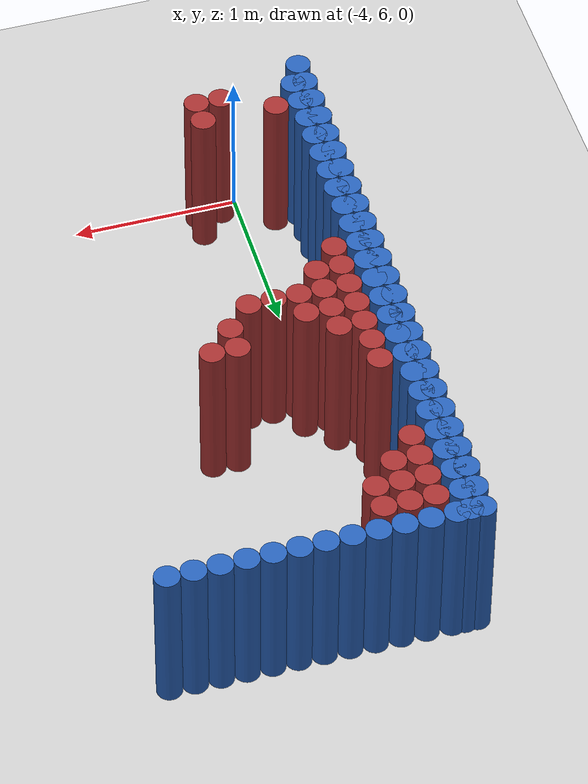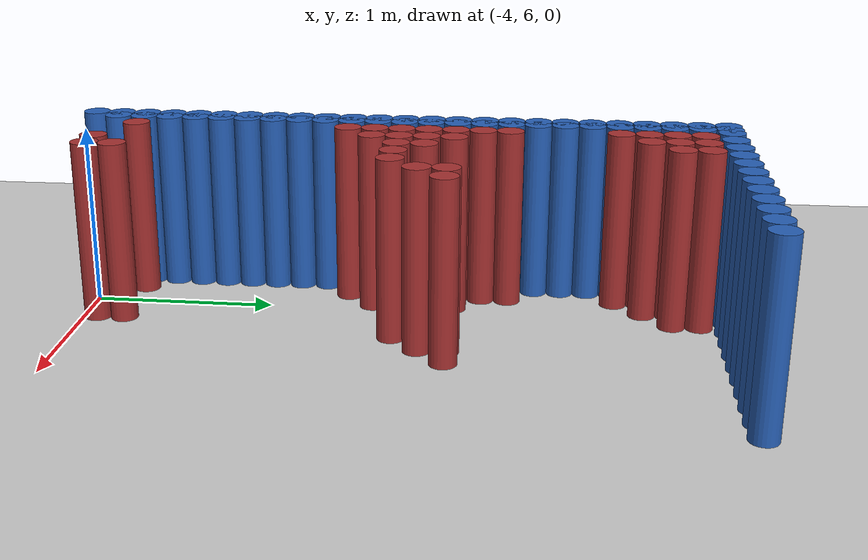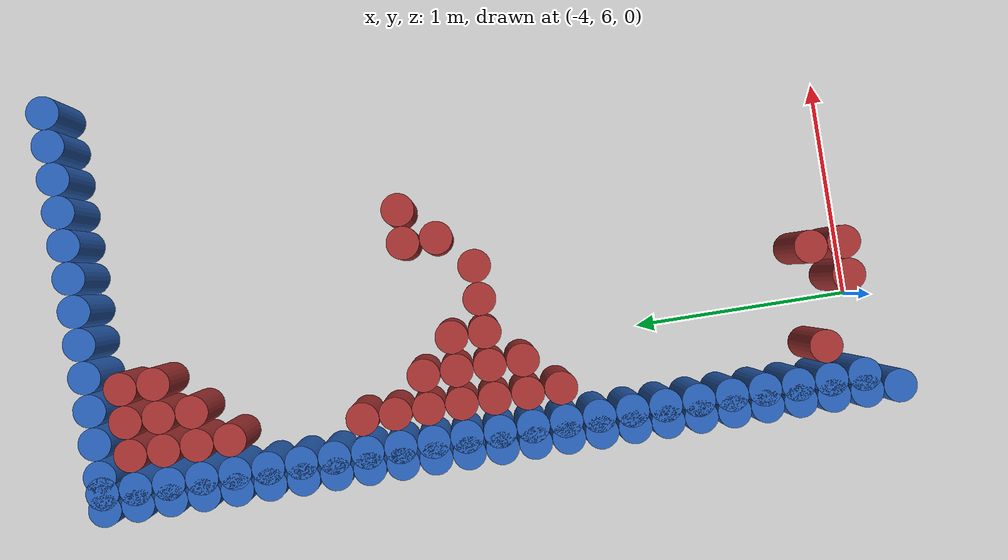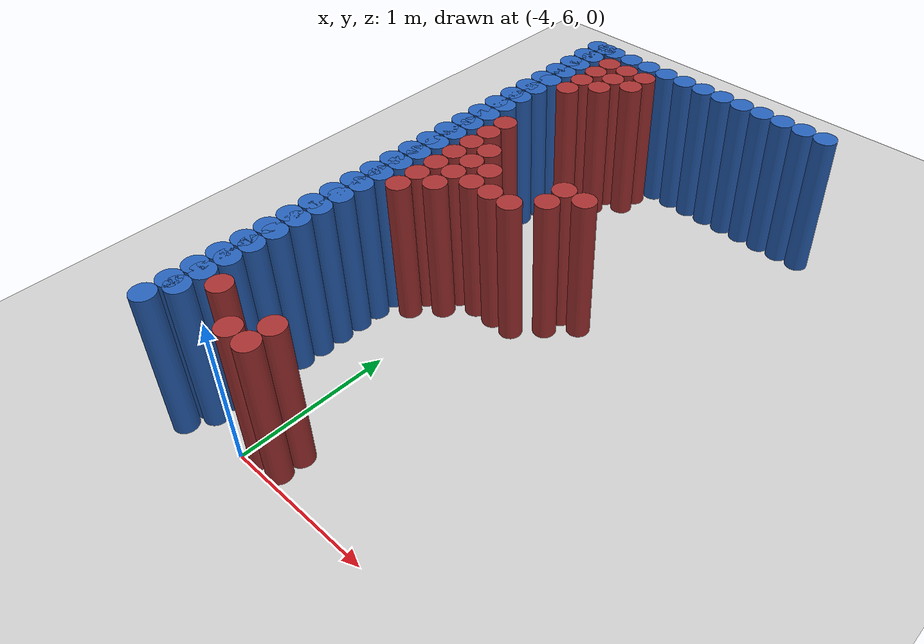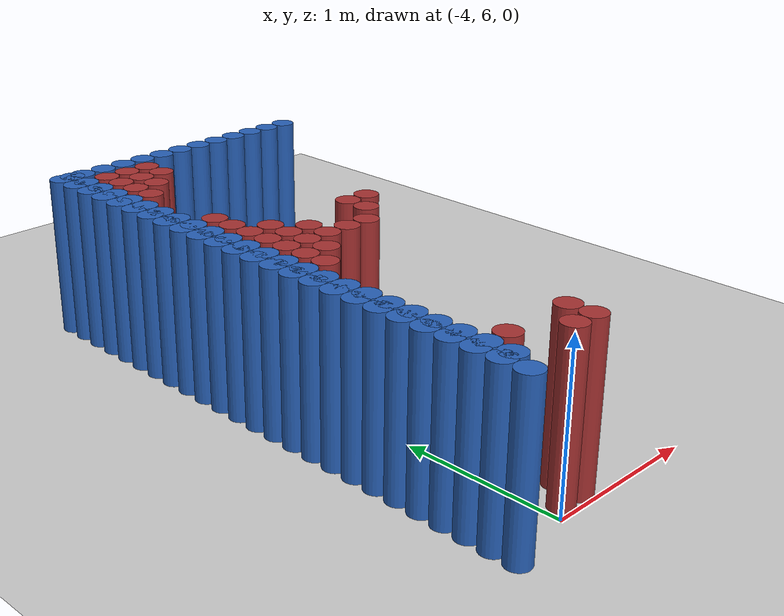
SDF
<sdf version="1.6">
 <world name="barn_world">
  <model name="ground_plane">
   <static>1</static>
   <link name="link">
    <collision name="collision">
     <geometry><plane><normal>0 0 1</normal><size>100 100</size></plane></geometry>
    </collision>
    <visual name="visual">
     <geometry><plane><normal>0 0 1</normal><size>100 100</size></plane></geometry>
     <material>
      <script><uri>file://media/materials/scripts/gazebo.material</uri><name>Gazebo/Grey</name></script>
     </material>
    </visual>
   </link>
  </model>
  <model name="unit_cylinder_132">
   <static>1</static>
   <pose>-4.3500 6.0750 0.5 0 0 0</pose>
   <link name="link">
    <collision name="collision">
     <geometry><cylinder><radius>0.075</radius><length>1</length></cylinder></geometry>
    </collision>
    <visual name="visual">
     <geometry><cylinder><radius>0.075</radius><length>1</length></cylinder></geometry>
     <material><ambient>0.152 0.379 0.72 1</ambient><diffuse>0.152 0.379 0.72 1</diffuse></material>
    </visual>
   </link>
  </model>
  <model name="unit_cylinder_133">
   <static>1</static>
   <pose>-4.3500 6.2250 0.5 0 0 0</pose>
   <link name="link">
    <collision name="collision">
     <geometry><cylinder><radius>0.075</radius><length>1</length></cylinder></geometry>
    </collision>
    <visual name="visual">
     <geometry><cylinder><radius>0.075</radius><length>1</length></cylinder></geometry>
     <material><ambient>0.152 0.379 0.72 1</ambient><diffuse>0.152 0.379 0.72 1</diffuse></material>
    </visual>
   </link>
  </model>
  <model name="unit_cylinder_134">
   <static>1</static>
   <pose>-4.3500 6.3750 0.5 0 0 0</pose>
   <link name="link">
    <collision name="collision">
     <geometry><cylinder><radius>0.075</radius><length>1</length></cylinder></geometry>
    </collision>
    <visual name="visual">
     <geometry><cylinder><radius>0.075</radius><length>1</length></cylinder></geometry>
     <material><ambient>0.152 0.379 0.72 1</ambient><diffuse>0.152 0.379 0.72 1</diffuse></material>
    </visual>
   </link>
  </model>
  <model name="unit_cylinder_135">
   <static>1</static>
   <pose>-4.3500 6.5250 0.5 0 0 0</pose>
   <link name="link">
    <collision name="collision">
     <geometry><cylinder><radius>0.075</radius><length>1</length></cylinder></geometry>
    </collision>
    <visual name="visual">
     <geometry><cylinder><radius>0.075</radius><length>1</length></cylinder></geometry>
     <material><ambient>0.152 0.379 0.72 1</ambient><diffuse>0.152 0.379 0.72 1</diffuse></material>
    </visual>
   </link>
  </model>
  <model name="unit_cylinder_136">
   <static>1</static>
   <pose>-4.3500 6.6750 0.5 0 0 0</pose>
   <link name="link">
    <collision name="collision">
     <geometry><cylinder><radius>0.075</radius><length>1</length></cylinder></geometry>
    </collision>
    <visual name="visual">
     <geometry><cylinder><radius>0.075</radius><length>1</length></cylinder></geometry>
     <material><ambient>0.152 0.379 0.72 1</ambient><diffuse>0.152 0.379 0.72 1</diffuse></material>
    </visual>
   </link>
  </model>
  <model name="unit_cylinder_137">
   <static>1</static>
   <pose>-4.3500 6.8250 0.5 0 0 0</pose>
   <link name="link">
    <collision name="collision">
     <geometry><cylinder><radius>0.075</radius><length>1</length></cylinder></geometry>
    </collision>
    <visual name="visual">
     <geometry><cylinder><radius>0.075</radius><length>1</length></cylinder></geometry>
     <material><ambient>0.152 0.379 0.72 1</ambient><diffuse>0.152 0.379 0.72 1</diffuse></material>
    </visual>
   </link>
  </model>
  <model name="unit_cylinder_138">
   <static>1</static>
   <pose>-4.3500 6.9750 0.5 0 0 0</pose>
   <link name="link">
    <collision name="collision">
     <geometry><cylinder><radius>0.075</radius><length>1</length></cylinder></geometry>
    </collision>
    <visual name="visual">
     <geometry><cylinder><radius>0.075</radius><length>1</length></cylinder></geometry>
     <material><ambient>0.152 0.379 0.72 1</ambient><diffuse>0.152 0.379 0.72 1</diffuse></material>
    </visual>
   </link>
  </model>
  <model name="unit_cylinder_139">
   <static>1</static>
   <pose>-4.3500 7.1250 0.5 0 0 0</pose>
   <link name="link">
    <collision name="collision">
     <geometry><cylinder><radius>0.075</radius><length>1</length></cylinder></geometry>
    </collision>
    <visual name="visual">
     <geometry><cylinder><radius>0.075</radius><length>1</length></cylinder></geometry>
     <material><ambient>0.152 0.379 0.72 1</ambient><diffuse>0.152 0.379 0.72 1</diffuse></material>
    </visual>
   </link>
  </model>
  <model name="unit_cylinder_140">
   <static>1</static>
   <pose>-4.3500 7.2750 0.5 0 0 0</pose>
   <link name="link">
    <collision name="collision">
     <geometry><cylinder><radius>0.075</radius><length>1</length></cylinder></geometry>
    </collision>
    <visual name="visual">
     <geometry><cylinder><radius>0.075</radius><length>1</length></cylinder></geometry>
     <material><ambient>0.152 0.379 0.72 1</ambient><diffuse>0.152 0.379 0.72 1</diffuse></material>
    </visual>
   </link>
  </model>
  <model name="unit_cylinder_141">
   <static>1</static>
   <pose>-4.3500 7.4250 0.5 0 0 0</pose>
   <link name="link">
    <collision name="collision">
     <geometry><cylinder><radius>0.075</radius><length>1</length></cylinder></geometry>
    </collision>
    <visual name="visual">
     <geometry><cylinder><radius>0.075</radius><length>1</length></cylinder></geometry>
     <material><ambient>0.152 0.379 0.72 1</ambient><diffuse>0.152 0.379 0.72 1</diffuse></material>
    </visual>
   </link>
  </model>
  <model name="unit_cylinder_142">
   <static>1</static>
   <pose>-4.3500 7.5750 0.5 0 0 0</pose>
   <link name="link">
    <collision name="collision">
     <geometry><cylinder><radius>0.075</radius><length>1</length></cylinder></geometry>
    </collision>
    <visual name="visual">
     <geometry><cylinder><radius>0.075</radius><length>1</length></cylinder></geometry>
     <material><ambient>0.152 0.379 0.72 1</ambient><diffuse>0.152 0.379 0.72 1</diffuse></material>
    </visual>
   </link>
  </model>
  <model name="unit_cylinder_143">
   <static>1</static>
   <pose>-4.3500 7.7250 0.5 0 0 0</pose>
   <link name="link">
    <collision name="collision">
     <geometry><cylinder><radius>0.075</radius><length>1</length></cylinder></geometry>
    </collision>
    <visual name="visual">
     <geometry><cylinder><radius>0.075</radius><length>1</length></cylinder></geometry>
     <material><ambient>0.152 0.379 0.72 1</ambient><diffuse>0.152 0.379 0.72 1</diffuse></material>
    </visual>
   </link>
  </model>
  <model name="unit_cylinder_144">
   <static>1</static>
   <pose>-4.3500 7.8750 0.5 0 0 0</pose>
   <link name="link">
    <collision name="collision">
     <geometry><cylinder><radius>0.075</radius><length>1</length></cylinder></geometry>
    </collision>
    <visual name="visual">
     <geometry><cylinder><radius>0.075</radius><length>1</length></cylinder></geometry>
     <material><ambient>0.152 0.379 0.72 1</ambient><diffuse>0.152 0.379 0.72 1</diffuse></material>
    </visual>
   </link>
  </model>
  <model name="unit_cylinder_145">
   <static>1</static>
   <pose>-4.3500 8.0250 0.5 0 0 0</pose>
   <link name="link">
    <collision name="collision">
     <geometry><cylinder><radius>0.075</radius><length>1</length></cylinder></geometry>
    </collision>
    <visual name="visual">
     <geometry><cylinder><radius>0.075</radius><length>1</length></cylinder></geometry>
     <material><ambient>0.152 0.379 0.72 1</ambient><diffuse>0.152 0.379 0.72 1</diffuse></material>
    </visual>
   </link>
  </model>
  <model name="unit_cylinder_146">
   <static>1</static>
   <pose>-4.3500 8.1750 0.5 0 0 0</pose>
   <link name="link">
    <collision name="collision">
     <geometry><cylinder><radius>0.075</radius><length>1</length></cylinder></geometry>
    </collision>
    <visual name="visual">
     <geometry><cylinder><radius>0.075</radius><length>1</length></cylinder></geometry>
     <material><ambient>0.152 0.379 0.72 1</ambient><diffuse>0.152 0.379 0.72 1</diffuse></material>
    </visual>
   </link>
  </model>
  <model name="unit_cylinder_147">
   <static>1</static>
   <pose>-4.3500 8.3250 0.5 0 0 0</pose>
   <link name="link">
    <collision name="collision">
     <geometry><cylinder><radius>0.075</radius><length>1</length></cylinder></geometry>
    </collision>
    <visual name="visual">
     <geometry><cylinder><radius>0.075</radius><length>1</length></cylinder></geometry>
     <material><ambient>0.152 0.379 0.72 1</ambient><diffuse>0.152 0.379 0.72 1</diffuse></material>
    </visual>
   </link>
  </model>
  <model name="unit_cylinder_148">
   <static>1</static>
   <pose>-4.3500 8.4750 0.5 0 0 0</pose>
   <link name="link">
    <collision name="collision">
     <geometry><cylinder><radius>0.075</radius><length>1</length></cylinder></geometry>
    </collision>
    <visual name="visual">
     <geometry><cylinder><radius>0.075</radius><length>1</length></cylinder></geometry>
     <material><ambient>0.152 0.379 0.72 1</ambient><diffuse>0.152 0.379 0.72 1</diffuse></material>
    </visual>
   </link>
  </model>
  <model name="unit_cylinder_149">
   <static>1</static>
   <pose>-4.3500 8.6250 0.5 0 0 0</pose>
   <link name="link">
    <collision name="collision">
     <geometry><cylinder><radius>0.075</radius><length>1</length></cylinder></geometry>
    </collision>
    <visual name="visual">
     <geometry><cylinder><radius>0.075</radius><length>1</length></cylinder></geometry>
     <material><ambient>0.152 0.379 0.72 1</ambient><diffuse>0.152 0.379 0.72 1</diffuse></material>
    </visual>
   </link>
  </model>
  <model name="unit_cylinder_150">
   <static>1</static>
   <pose>-4.3500 8.7750 0.5 0 0 0</pose>
   <link name="link">
    <collision name="collision">
     <geometry><cylinder><radius>0.075</radius><length>1</length></cylinder></geometry>
    </collision>
    <visual name="visual">
     <geometry><cylinder><radius>0.075</radius><length>1</length></cylinder></geometry>
     <material><ambient>0.152 0.379 0.72 1</ambient><diffuse>0.152 0.379 0.72 1</diffuse></material>
    </visual>
   </link>
  </model>
  <model name="unit_cylinder_151">
   <static>1</static>
   <pose>-4.3500 8.9250 0.5 0 0 0</pose>
   <link name="link">
    <collision name="collision">
     <geometry><cylinder><radius>0.075</radius><length>1</length></cylinder></geometry>
    </collision>
    <visual name="visual">
     <geometry><cylinder><radius>0.075</radius><length>1</length></cylinder></geometry>
     <material><ambient>0.152 0.379 0.72 1</ambient><diffuse>0.152 0.379 0.72 1</diffuse></material>
    </visual>
   </link>
  </model>
  <model name="unit_cylinder_152">
   <static>1</static>
   <pose>-4.3500 9.0750 0.5 0 0 0</pose>
   <link name="link">
    <collision name="collision">
     <geometry><cylinder><radius>0.075</radius><length>1</length></cylinder></geometry>
    </collision>
    <visual name="visual">
     <geometry><cylinder><radius>0.075</radius><length>1</length></cylinder></geometry>
     <material><ambient>0.152 0.379 0.72 1</ambient><diffuse>0.152 0.379 0.72 1</diffuse></material>
    </visual>
   </link>
  </model>
  <model name="unit_cylinder_153">
   <static>1</static>
   <pose>-4.3500 9.2250 0.5 0 0 0</pose>
   <link name="link">
    <collision name="collision">
     <geometry><cylinder><radius>0.075</radius><length>1</length></cylinder></geometry>
    </collision>
    <visual name="visual">
     <geometry><cylinder><radius>0.075</radius><length>1</length></cylinder></geometry>
     <material><ambient>0.152 0.379 0.72 1</ambient><diffuse>0.152 0.379 0.72 1</diffuse></material>
    </visual>
   </link>
  </model>
  <model name="unit_cylinder_154">
   <static>1</static>
   <pose>-4.3500 9.3750 0.5 0 0 0</pose>
   <link name="link">
    <collision name="collision">
     <geometry><cylinder><radius>0.075</radius><length>1</length></cylinder></geometry>
    </collision>
    <visual name="visual">
     <geometry><cylinder><radius>0.075</radius><length>1</length></cylinder></geometry>
     <material><ambient>0.152 0.379 0.72 1</ambient><diffuse>0.152 0.379 0.72 1</diffuse></material>
    </visual>
   </link>
  </model>
  <model name="unit_cylinder_155">
   <static>1</static>
   <pose>-4.3500 9.5250 0.5 0 0 0</pose>
   <link name="link">
    <collision name="collision">
     <geometry><cylinder><radius>0.075</radius><length>1</length></cylinder></geometry>
    </collision>
    <visual name="visual">
     <geometry><cylinder><radius>0.075</radius><length>1</length></cylinder></geometry>
     <material><ambient>0.152 0.379 0.72 1</ambient><diffuse>0.152 0.379 0.72 1</diffuse></material>
    </visual>
   </link>
  </model>
  <model name="unit_cylinder_161">
   <static>1</static>
   <pose>-4.2000 6.2250 0.5 0 0 0</pose>
   <link name="link">
    <collision name="collision">
     <geometry><cylinder><radius>0.075</radius><length>1</length></cylinder></geometry>
    </collision>
    <visual name="visual">
     <geometry><cylinder><radius>0.075</radius><length>1</length></cylinder></geometry>
     <material><ambient>0.648 0.192 0.192 1</ambient><diffuse>0.648 0.192 0.192 1</diffuse></material>
    </visual>
   </link>
  </model>
  <model name="unit_cylinder_162">
   <static>1</static>
   <pose>-4.2000 7.4250 0.5 0 0 0</pose>
   <link name="link">
    <collision name="collision">
     <geometry><cylinder><radius>0.075</radius><length>1</length></cylinder></geometry>
    </collision>
    <visual name="visual">
     <geometry><cylinder><radius>0.075</radius><length>1</length></cylinder></geometry>
     <material><ambient>0.648 0.192 0.192 1</ambient><diffuse>0.648 0.192 0.192 1</diffuse></material>
    </visual>
   </link>
  </model>
  <model name="unit_cylinder_163">
   <static>1</static>
   <pose>-4.2000 7.5750 0.5 0 0 0</pose>
   <link name="link">
    <collision name="collision">
     <geometry><cylinder><radius>0.075</radius><length>1</length></cylinder></geometry>
    </collision>
    <visual name="visual">
     <geometry><cylinder><radius>0.075</radius><length>1</length></cylinder></geometry>
     <material><ambient>0.648 0.192 0.192 1</ambient><diffuse>0.648 0.192 0.192 1</diffuse></material>
    </visual>
   </link>
  </model>
  <model name="unit_cylinder_164">
   <static>1</static>
   <pose>-4.2000 7.7250 0.5 0 0 0</pose>
   <link name="link">
    <collision name="collision">
     <geometry><cylinder><radius>0.075</radius><length>1</length></cylinder></geometry>
    </collision>
    <visual name="visual">
     <geometry><cylinder><radius>0.075</radius><length>1</length></cylinder></geometry>
     <material><ambient>0.648 0.192 0.192 1</ambient><diffuse>0.648 0.192 0.192 1</diffuse></material>
    </visual>
   </link>
  </model>
  <model name="unit_cylinder_165">
   <static>1</static>
   <pose>-4.2000 7.8750 0.5 0 0 0</pose>
   <link name="link">
    <collision name="collision">
     <geometry><cylinder><radius>0.075</radius><length>1</length></cylinder></geometry>
    </collision>
    <visual name="visual">
     <geometry><cylinder><radius>0.075</radius><length>1</length></cylinder></geometry>
     <material><ambient>0.648 0.192 0.192 1</ambient><diffuse>0.648 0.192 0.192 1</diffuse></material>
    </visual>
   </link>
  </model>
  <model name="unit_cylinder_166">
   <static>1</static>
   <pose>-4.2000 8.0250 0.5 0 0 0</pose>
   <link name="link">
    <collision name="collision">
     <geometry><cylinder><radius>0.075</radius><length>1</length></cylinder></geometry>
    </collision>
    <visual name="visual">
     <geometry><cylinder><radius>0.075</radius><length>1</length></cylinder></geometry>
     <material><ambient>0.648 0.192 0.192 1</ambient><diffuse>0.648 0.192 0.192 1</diffuse></material>
    </visual>
   </link>
  </model>
  <model name="unit_cylinder_167">
   <static>1</static>
   <pose>-4.2000 8.1750 0.5 0 0 0</pose>
   <link name="link">
    <collision name="collision">
     <geometry><cylinder><radius>0.075</radius><length>1</length></cylinder></geometry>
    </collision>
    <visual name="visual">
     <geometry><cylinder><radius>0.075</radius><length>1</length></cylinder></geometry>
     <material><ambient>0.648 0.192 0.192 1</ambient><diffuse>0.648 0.192 0.192 1</diffuse></material>
    </visual>
   </link>
  </model>
  <model name="unit_cylinder_168">
   <static>1</static>
   <pose>-4.2000 8.3250 0.5 0 0 0</pose>
   <link name="link">
    <collision name="collision">
     <geometry><cylinder><radius>0.075</radius><length>1</length></cylinder></geometry>
    </collision>
    <visual name="visual">
     <geometry><cylinder><radius>0.075</radius><length>1</length></cylinder></geometry>
     <material><ambient>0.648 0.192 0.192 1</ambient><diffuse>0.648 0.192 0.192 1</diffuse></material>
    </visual>
   </link>
  </model>
  <model name="unit_cylinder_169">
   <static>1</static>
   <pose>-4.2000 8.9250 0.5 0 0 0</pose>
   <link name="link">
    <collision name="collision">
     <geometry><cylinder><radius>0.075</radius><length>1</length></cylinder></geometry>
    </collision>
    <visual name="visual">
     <geometry><cylinder><radius>0.075</radius><length>1</length></cylinder></geometry>
     <material><ambient>0.648 0.192 0.192 1</ambient><diffuse>0.648 0.192 0.192 1</diffuse></material>
    </visual>
   </link>
  </model>
  <model name="unit_cylinder_170">
   <static>1</static>
   <pose>-4.2000 9.0750 0.5 0 0 0</pose>
   <link name="link">
    <collision name="collision">
     <geometry><cylinder><radius>0.075</radius><length>1</length></cylinder></geometry>
    </collision>
    <visual name="visual">
     <geometry><cylinder><radius>0.075</radius><length>1</length></cylinder></geometry>
     <material><ambient>0.648 0.192 0.192 1</ambient><diffuse>0.648 0.192 0.192 1</diffuse></material>
    </visual>
   </link>
  </model>
  <model name="unit_cylinder_171">
   <static>1</static>
   <pose>-4.2000 9.2250 0.5 0 0 0</pose>
   <link name="link">
    <collision name="collision">
     <geometry><cylinder><radius>0.075</radius><length>1</length></cylinder></geometry>
    </collision>
    <visual name="visual">
     <geometry><cylinder><radius>0.075</radius><length>1</length></cylinder></geometry>
     <material><ambient>0.648 0.192 0.192 1</ambient><diffuse>0.648 0.192 0.192 1</diffuse></material>
    </visual>
   </link>
  </model>
  <model name="unit_cylinder_172">
   <static>1</static>
   <pose>-4.2000 9.3750 0.5 0 0 0</pose>
   <link name="link">
    <collision name="collision">
     <geometry><cylinder><radius>0.075</radius><length>1</length></cylinder></geometry>
    </collision>
    <visual name="visual">
     <geometry><cylinder><radius>0.075</radius><length>1</length></cylinder></geometry>
     <material><ambient>0.648 0.192 0.192 1</ambient><diffuse>0.648 0.192 0.192 1</diffuse></material>
    </visual>
   </link>
  </model>
  <model name="unit_cylinder_178">
   <static>1</static>
   <pose>-4.0500 7.5750 0.5 0 0 0</pose>
   <link name="link">
    <collision name="collision">
     <geometry><cylinder><radius>0.075</radius><length>1</length></cylinder></geometry>
    </collision>
    <visual name="visual">
     <geometry><cylinder><radius>0.075</radius><length>1</length></cylinder></geometry>
     <material><ambient>0.648 0.192 0.192 1</ambient><diffuse>0.648 0.192 0.192 1</diffuse></material>
    </visual>
   </link>
  </model>
  <model name="unit_cylinder_179">
   <static>1</static>
   <pose>-4.0500 7.7250 0.5 0 0 0</pose>
   <link name="link">
    <collision name="collision">
     <geometry><cylinder><radius>0.075</radius><length>1</length></cylinder></geometry>
    </collision>
    <visual name="visual">
     <geometry><cylinder><radius>0.075</radius><length>1</length></cylinder></geometry>
     <material><ambient>0.648 0.192 0.192 1</ambient><diffuse>0.648 0.192 0.192 1</diffuse></material>
    </visual>
   </link>
  </model>
  <model name="unit_cylinder_180">
   <static>1</static>
   <pose>-4.0500 7.8750 0.5 0 0 0</pose>
   <link name="link">
    <collision name="collision">
     <geometry><cylinder><radius>0.075</radius><length>1</length></cylinder></geometry>
    </collision>
    <visual name="visual">
     <geometry><cylinder><radius>0.075</radius><length>1</length></cylinder></geometry>
     <material><ambient>0.648 0.192 0.192 1</ambient><diffuse>0.648 0.192 0.192 1</diffuse></material>
    </visual>
   </link>
  </model>
  <model name="unit_cylinder_181">
   <static>1</static>
   <pose>-4.0500 8.0250 0.5 0 0 0</pose>
   <link name="link">
    <collision name="collision">
     <geometry><cylinder><radius>0.075</radius><length>1</length></cylinder></geometry>
    </collision>
    <visual name="visual">
     <geometry><cylinder><radius>0.075</radius><length>1</length></cylinder></geometry>
     <material><ambient>0.648 0.192 0.192 1</ambient><diffuse>0.648 0.192 0.192 1</diffuse></material>
    </visual>
   </link>
  </model>
  <model name="unit_cylinder_182">
   <static>1</static>
   <pose>-4.0500 9.0750 0.5 0 0 0</pose>
   <link name="link">
    <collision name="collision">
     <geometry><cylinder><radius>0.075</radius><length>1</length></cylinder></geometry>
    </collision>
    <visual name="visual">
     <geometry><cylinder><radius>0.075</radius><length>1</length></cylinder></geometry>
     <material><ambient>0.648 0.192 0.192 1</ambient><diffuse>0.648 0.192 0.192 1</diffuse></material>
    </visual>
   </link>
  </model>
  <model name="unit_cylinder_183">
   <static>1</static>
   <pose>-4.0500 9.2250 0.5 0 0 0</pose>
   <link name="link">
    <collision name="collision">
     <geometry><cylinder><radius>0.075</radius><length>1</length></cylinder></geometry>
    </collision>
    <visual name="visual">
     <geometry><cylinder><radius>0.075</radius><length>1</length></cylinder></geometry>
     <material><ambient>0.648 0.192 0.192 1</ambient><diffuse>0.648 0.192 0.192 1</diffuse></material>
    </visual>
   </link>
  </model>
  <model name="unit_cylinder_184">
   <static>1</static>
   <pose>-4.0500 9.3750 0.5 0 0 0</pose>
   <link name="link">
    <collision name="collision">
     <geometry><cylinder><radius>0.075</radius><length>1</length></cylinder></geometry>
    </collision>
    <visual name="visual">
     <geometry><cylinder><radius>0.075</radius><length>1</length></cylinder></geometry>
     <material><ambient>0.648 0.192 0.192 1</ambient><diffuse>0.648 0.192 0.192 1</diffuse></material>
    </visual>
   </link>
  </model>
  <model name="unit_cylinder_190">
   <static>1</static>
   <pose>-3.9000 6.0750 0.5 0 0 0</pose>
   <link name="link">
    <collision name="collision">
     <geometry><cylinder><radius>0.075</radius><length>1</length></cylinder></geometry>
    </collision>
    <visual name="visual">
     <geometry><cylinder><radius>0.075</radius><length>1</length></cylinder></geometry>
     <material><ambient>0.648 0.192 0.192 1</ambient><diffuse>0.648 0.192 0.192 1</diffuse></material>
    </visual>
   </link>
  </model>
  <model name="unit_cylinder_191">
   <static>1</static>
   <pose>-3.9000 7.7250 0.5 0 0 0</pose>
   <link name="link">
    <collision name="collision">
     <geometry><cylinder><radius>0.075</radius><length>1</length></cylinder></geometry>
    </collision>
    <visual name="visual">
     <geometry><cylinder><radius>0.075</radius><length>1</length></cylinder></geometry>
     <material><ambient>0.648 0.192 0.192 1</ambient><diffuse>0.648 0.192 0.192 1</diffuse></material>
    </visual>
   </link>
  </model>
  <model name="unit_cylinder_192">
   <static>1</static>
   <pose>-3.9000 7.8750 0.5 0 0 0</pose>
   <link name="link">
    <collision name="collision">
     <geometry><cylinder><radius>0.075</radius><length>1</length></cylinder></geometry>
    </collision>
    <visual name="visual">
     <geometry><cylinder><radius>0.075</radius><length>1</length></cylinder></geometry>
     <material><ambient>0.648 0.192 0.192 1</ambient><diffuse>0.648 0.192 0.192 1</diffuse></material>
    </visual>
   </link>
  </model>
  <model name="unit_cylinder_193">
   <static>1</static>
   <pose>-3.9000 9.2250 0.5 0 0 0</pose>
   <link name="link">
    <collision name="collision">
     <geometry><cylinder><radius>0.075</radius><length>1</length></cylinder></geometry>
    </collision>
    <visual name="visual">
     <geometry><cylinder><radius>0.075</radius><length>1</length></cylinder></geometry>
     <material><ambient>0.648 0.192 0.192 1</ambient><diffuse>0.648 0.192 0.192 1</diffuse></material>
    </visual>
   </link>
  </model>
  <model name="unit_cylinder_194">
   <static>1</static>
   <pose>-3.9000 9.3750 0.5 0 0 0</pose>
   <link name="link">
    <collision name="collision">
     <geometry><cylinder><radius>0.075</radius><length>1</length></cylinder></geometry>
    </collision>
    <visual name="visual">
     <geometry><cylinder><radius>0.075</radius><length>1</length></cylinder></geometry>
     <material><ambient>0.648 0.192 0.192 1</ambient><diffuse>0.648 0.192 0.192 1</diffuse></material>
    </visual>
   </link>
  </model>
  <model name="unit_cylinder_200">
   <static>1</static>
   <pose>-3.7500 6.0750 0.5 0 0 0</pose>
   <link name="link">
    <collision name="collision">
     <geometry><cylinder><radius>0.075</radius><length>1</length></cylinder></geometry>
    </collision>
    <visual name="visual">
     <geometry><cylinder><radius>0.075</radius><length>1</length></cylinder></geometry>
     <material><ambient>0.648 0.192 0.192 1</ambient><diffuse>0.648 0.192 0.192 1</diffuse></material>
    </visual>
   </link>
  </model>
  <model name="unit_cylinder_201">
   <static>1</static>
   <pose>-3.7500 6.2250 0.5 0 0 0</pose>
   <link name="link">
    <collision name="collision">
     <geometry><cylinder><radius>0.075</radius><length>1</length></cylinder></geometry>
    </collision>
    <visual name="visual">
     <geometry><cylinder><radius>0.075</radius><length>1</length></cylinder></geometry>
     <material><ambient>0.648 0.192 0.192 1</ambient><diffuse>0.648 0.192 0.192 1</diffuse></material>
    </visual>
   </link>
  </model>
  <model name="unit_cylinder_202">
   <static>1</static>
   <pose>-3.7500 7.7250 0.5 0 0 0</pose>
   <link name="link">
    <collision name="collision">
     <geometry><cylinder><radius>0.075</radius><length>1</length></cylinder></geometry>
    </collision>
    <visual name="visual">
     <geometry><cylinder><radius>0.075</radius><length>1</length></cylinder></geometry>
     <material><ambient>0.648 0.192 0.192 1</ambient><diffuse>0.648 0.192 0.192 1</diffuse></material>
    </visual>
   </link>
  </model>
  <model name="unit_cylinder_207">
   <static>1</static>
   <pose>-3.6000 7.7250 0.5 0 0 0</pose>
   <link name="link">
    <collision name="collision">
     <geometry><cylinder><radius>0.075</radius><length>1</length></cylinder></geometry>
    </collision>
    <visual name="visual">
     <geometry><cylinder><radius>0.075</radius><length>1</length></cylinder></geometry>
     <material><ambient>0.648 0.192 0.192 1</ambient><diffuse>0.648 0.192 0.192 1</diffuse></material>
    </visual>
   </link>
  </model>
  <model name="unit_cylinder_212">
   <static>1</static>
   <pose>-3.4500 7.8750 0.5 0 0 0</pose>
   <link name="link">
    <collision name="collision">
     <geometry><cylinder><radius>0.075</radius><length>1</length></cylinder></geometry>
    </collision>
    <visual name="visual">
     <geometry><cylinder><radius>0.075</radius><length>1</length></cylinder></geometry>
     <material><ambient>0.648 0.192 0.192 1</ambient><diffuse>0.648 0.192 0.192 1</diffuse></material>
    </visual>
   </link>
  </model>
  <model name="unit_cylinder_213">
   <static>1</static>
   <pose>-3.4500 8.0250 0.5 0 0 0</pose>
   <link name="link">
    <collision name="collision">
     <geometry><cylinder><radius>0.075</radius><length>1</length></cylinder></geometry>
    </collision>
    <visual name="visual">
     <geometry><cylinder><radius>0.075</radius><length>1</length></cylinder></geometry>
     <material><ambient>0.648 0.192 0.192 1</ambient><diffuse>0.648 0.192 0.192 1</diffuse></material>
    </visual>
   </link>
  </model>
  <model name="unit_cylinder_215">
   <static>1</static>
   <pose>-3.3000 8.0250 0.5 0 0 0</pose>
   <link name="link">
    <collision name="collision">
     <geometry><cylinder><radius>0.075</radius><length>1</length></cylinder></geometry>
    </collision>
    <visual name="visual">
     <geometry><cylinder><radius>0.075</radius><length>1</length></cylinder></geometry>
     <material><ambient>0.648 0.192 0.192 1</ambient><diffuse>0.648 0.192 0.192 1</diffuse></material>
    </visual>
   </link>
  </model>
  <model name="unit_cylinder_300">
   <static>1</static>
   <pose>-2.6250 9.5250 0.5 0 0 0</pose>
   <link name="link">
    <collision name="collision">
     <geometry><cylinder><radius>0.075</radius><length>1</length></cylinder></geometry>
    </collision>
    <visual name="visual">
     <geometry><cylinder><radius>0.075</radius><length>1</length></cylinder></geometry>
     <material><ambient>0.152 0.379 0.72 1</ambient><diffuse>0.152 0.379 0.72 1</diffuse></material>
    </visual>
   </link>
  </model>
  <model name="unit_cylinder_301">
   <static>1</static>
   <pose>-2.7750 9.5250 0.5 0 0 0</pose>
   <link name="link">
    <collision name="collision">
     <geometry><cylinder><radius>0.075</radius><length>1</length></cylinder></geometry>
    </collision>
    <visual name="visual">
     <geometry><cylinder><radius>0.075</radius><length>1</length></cylinder></geometry>
     <material><ambient>0.152 0.379 0.72 1</ambient><diffuse>0.152 0.379 0.72 1</diffuse></material>
    </visual>
   </link>
  </model>
  <model name="unit_cylinder_302">
   <static>1</static>
   <pose>-2.9250 9.5250 0.5 0 0 0</pose>
   <link name="link">
    <collision name="collision">
     <geometry><cylinder><radius>0.075</radius><length>1</length></cylinder></geometry>
    </collision>
    <visual name="visual">
     <geometry><cylinder><radius>0.075</radius><length>1</length></cylinder></geometry>
     <material><ambient>0.152 0.379 0.72 1</ambient><diffuse>0.152 0.379 0.72 1</diffuse></material>
    </visual>
   </link>
  </model>
  <model name="unit_cylinder_303">
   <static>1</static>
   <pose>-3.0750 9.5250 0.5 0 0 0</pose>
   <link name="link">
    <collision name="collision">
     <geometry><cylinder><radius>0.075</radius><length>1</length></cylinder></geometry>
    </collision>
    <visual name="visual">
     <geometry><cylinder><radius>0.075</radius><length>1</length></cylinder></geometry>
     <material><ambient>0.152 0.379 0.72 1</ambient><diffuse>0.152 0.379 0.72 1</diffuse></material>
    </visual>
   </link>
  </model>
  <model name="unit_cylinder_304">
   <static>1</static>
   <pose>-3.2250 9.5250 0.5 0 0 0</pose>
   <link name="link">
    <collision name="collision">
     <geometry><cylinder><radius>0.075</radius><length>1</length></cylinder></geometry>
    </collision>
    <visual name="visual">
     <geometry><cylinder><radius>0.075</radius><length>1</length></cylinder></geometry>
     <material><ambient>0.152 0.379 0.72 1</ambient><diffuse>0.152 0.379 0.72 1</diffuse></material>
    </visual>
   </link>
  </model>
  <model name="unit_cylinder_305">
   <static>1</static>
   <pose>-3.3750 9.5250 0.5 0 0 0</pose>
   <link name="link">
    <collision name="collision">
     <geometry><cylinder><radius>0.075</radius><length>1</length></cylinder></geometry>
    </collision>
    <visual name="visual">
     <geometry><cylinder><radius>0.075</radius><length>1</length></cylinder></geometry>
     <material><ambient>0.152 0.379 0.72 1</ambient><diffuse>0.152 0.379 0.72 1</diffuse></material>
    </visual>
   </link>
  </model>
  <model name="unit_cylinder_306">
   <static>1</static>
   <pose>-3.5250 9.5250 0.5 0 0 0</pose>
   <link name="link">
    <collision name="collision">
     <geometry><cylinder><radius>0.075</radius><length>1</length></cylinder></geometry>
    </collision>
    <visual name="visual">
     <geometry><cylinder><radius>0.075</radius><length>1</length></cylinder></geometry>
     <material><ambient>0.152 0.379 0.72 1</ambient><diffuse>0.152 0.379 0.72 1</diffuse></material>
    </visual>
   </link>
  </model>
  <model name="unit_cylinder_307">
   <static>1</static>
   <pose>-3.6750 9.5250 0.5 0 0 0</pose>
   <link name="link">
    <collision name="collision">
     <geometry><cylinder><radius>0.075</radius><length>1</length></cylinder></geometry>
    </collision>
    <visual name="visual">
     <geometry><cylinder><radius>0.075</radius><length>1</length></cylinder></geometry>
     <material><ambient>0.152 0.379 0.72 1</ambient><diffuse>0.152 0.379 0.72 1</diffuse></material>
    </visual>
   </link>
  </model>
  <model name="unit_cylinder_308">
   <static>1</static>
   <pose>-3.8250 9.5250 0.5 0 0 0</pose>
   <link name="link">
    <collision name="collision">
     <geometry><cylinder><radius>0.075</radius><length>1</length></cylinder></geometry>
    </collision>
    <visual name="visual">
     <geometry><cylinder><radius>0.075</radius><length>1</length></cylinder></geometry>
     <material><ambient>0.152 0.379 0.72 1</ambient><diffuse>0.152 0.379 0.72 1</diffuse></material>
    </visual>
   </link>
  </model>
  <model name="unit_cylinder_309">
   <static>1</static>
   <pose>-3.9750 9.5250 0.5 0 0 0</pose>
   <link name="link">
    <collision name="collision">
     <geometry><cylinder><radius>0.075</radius><length>1</length></cylinder></geometry>
    </collision>
    <visual name="visual">
     <geometry><cylinder><radius>0.075</radius><length>1</length></cylinder></geometry>
     <material><ambient>0.152 0.379 0.72 1</ambient><diffuse>0.152 0.379 0.72 1</diffuse></material>
    </visual>
   </link>
  </model>
  <model name="unit_cylinder_310">
   <static>1</static>
   <pose>-4.1250 9.5250 0.5 0 0 0</pose>
   <link name="link">
    <collision name="collision">
     <geometry><cylinder><radius>0.075</radius><length>1</length></cylinder></geometry>
    </collision>
    <visual name="visual">
     <geometry><cylinder><radius>0.075</radius><length>1</length></cylinder></geometry>
     <material><ambient>0.152 0.379 0.72 1</ambient><diffuse>0.152 0.379 0.72 1</diffuse></material>
    </visual>
   </link>
  </model>
  <model name="unit_cylinder_311">
   <static>1</static>
   <pose>-4.2750 9.5250 0.5 0 0 0</pose>
   <link name="link">
    <collision name="collision">
     <geometry><cylinder><radius>0.075</radius><length>1</length></cylinder></geometry>
    </collision>
    <visual name="visual">
     <geometry><cylinder><radius>0.075</radius><length>1</length></cylinder></geometry>
     <material><ambient>0.152 0.379 0.72 1</ambient><diffuse>0.152 0.379 0.72 1</diffuse></material>
    </visual>
   </link>
  </model>
  <model name="unit_cylinder_312">
   <static>1</static>
   <pose>-4.4250 9.5250 0.5 0 0 0</pose>
   <link name="link">
    <collision name="collision">
     <geometry><cylinder><radius>0.075</radius><length>1</length></cylinder></geometry>
    </collision>
    <visual name="visual">
     <geometry><cylinder><radius>0.075</radius><length>1</length></cylinder></geometry>
     <material><ambient>0.152 0.379 0.72 1</ambient><diffuse>0.152 0.379 0.72 1</diffuse></material>
    </visual>
   </link>
  </model>
  <model name="unit_cylinder_324">
   <static>1</static>
   <pose>-4.4250 5.9250 0.5 0 0 0</pose>
   <link name="link">
    <collision name="collision">
     <geometry><cylinder><radius>0.075</radius><length>1</length></cylinder></geometry>
    </collision>
    <visual name="visual">
     <geometry><cylinder><radius>0.075</radius><length>1</length></cylinder></geometry>
     <material><ambient>0.152 0.379 0.72 1</ambient><diffuse>0.152 0.379 0.72 1</diffuse></material>
    </visual>
   </link>
  </model>
  <model name="unit_cylinder_326">
   <static>1</static>
   <pose>-4.4250 6.0750 0.5 0 0 0</pose>
   <link name="link">
    <collision name="collision">
     <geometry><cylinder><radius>0.075</radius><length>1</length></cylinder></geometry>
    </collision>
    <visual name="visual">
     <geometry><cylinder><radius>0.075</radius><length>1</length></cylinder></geometry>
     <material><ambient>0.152 0.379 0.72 1</ambient><diffuse>0.152 0.379 0.72 1</diffuse></material>
    </visual>
   </link>
  </model>
  <model name="unit_cylinder_328">
   <static>1</static>
   <pose>-4.4250 6.2250 0.5 0 0 0</pose>
   <link name="link">
    <collision name="collision">
     <geometry><cylinder><radius>0.075</radius><length>1</length></cylinder></geometry>
    </collision>
    <visual name="visual">
     <geometry><cylinder><radius>0.075</radius><length>1</length></cylinder></geometry>
     <material><ambient>0.152 0.379 0.72 1</ambient><diffuse>0.152 0.379 0.72 1</diffuse></material>
    </visual>
   </link>
  </model>
  <model name="unit_cylinder_330">
   <static>1</static>
   <pose>-4.4250 6.3750 0.5 0 0 0</pose>
   <link name="link">
    <collision name="collision">
     <geometry><cylinder><radius>0.075</radius><length>1</length></cylinder></geometry>
    </collision>
    <visual name="visual">
     <geometry><cylinder><radius>0.075</radius><length>1</length></cylinder></geometry>
     <material><ambient>0.152 0.379 0.72 1</ambient><diffuse>0.152 0.379 0.72 1</diffuse></material>
    </visual>
   </link>
  </model>
  <model name="unit_cylinder_332">
   <static>1</static>
   <pose>-4.4250 6.5250 0.5 0 0 0</pose>
   <link name="link">
    <collision name="collision">
     <geometry><cylinder><radius>0.075</radius><length>1</length></cylinder></geometry>
    </collision>
    <visual name="visual">
     <geometry><cylinder><radius>0.075</radius><length>1</length></cylinder></geometry>
     <material><ambient>0.152 0.379 0.72 1</ambient><diffuse>0.152 0.379 0.72 1</diffuse></material>
    </visual>
   </link>
  </model>
  <model name="unit_cylinder_334">
   <static>1</static>
   <pose>-4.4250 6.6750 0.5 0 0 0</pose>
   <link name="link">
    <collision name="collision">
     <geometry><cylinder><radius>0.075</radius><length>1</length></cylinder></geometry>
    </collision>
    <visual name="visual">
     <geometry><cylinder><radius>0.075</radius><length>1</length></cylinder></geometry>
     <material><ambient>0.152 0.379 0.72 1</ambient><diffuse>0.152 0.379 0.72 1</diffuse></material>
    </visual>
   </link>
  </model>
  <model name="unit_cylinder_336">
   <static>1</static>
   <pose>-4.4250 6.8250 0.5 0 0 0</pose>
   <link name="link">
    <collision name="collision">
     <geometry><cylinder><radius>0.075</radius><length>1</length></cylinder></geometry>
    </collision>
    <visual name="visual">
     <geometry><cylinder><radius>0.075</radius><length>1</length></cylinder></geometry>
     <material><ambient>0.152 0.379 0.72 1</ambient><diffuse>0.152 0.379 0.72 1</diffuse></material>
    </visual>
   </link>
  </model>
  <model name="unit_cylinder_338">
   <static>1</static>
   <pose>-4.4250 6.9750 0.5 0 0 0</pose>
   <link name="link">
    <collision name="collision">
     <geometry><cylinder><radius>0.075</radius><length>1</length></cylinder></geometry>
    </collision>
    <visual name="visual">
     <geometry><cylinder><radius>0.075</radius><length>1</length></cylinder></geometry>
     <material><ambient>0.152 0.379 0.72 1</ambient><diffuse>0.152 0.379 0.72 1</diffuse></material>
    </visual>
   </link>
  </model>
  <model name="unit_cylinder_340">
   <static>1</static>
   <pose>-4.4250 7.1250 0.5 0 0 0</pose>
   <link name="link">
    <collision name="collision">
     <geometry><cylinder><radius>0.075</radius><length>1</length></cylinder></geometry>
    </collision>
    <visual name="visual">
     <geometry><cylinder><radius>0.075</radius><length>1</length></cylinder></geometry>
     <material><ambient>0.152 0.379 0.72 1</ambient><diffuse>0.152 0.379 0.72 1</diffuse></material>
    </visual>
   </link>
  </model>
  <model name="unit_cylinder_342">
   <static>1</static>
   <pose>-4.4250 7.2750 0.5 0 0 0</pose>
   <link name="link">
    <collision name="collision">
     <geometry><cylinder><radius>0.075</radius><length>1</length></cylinder></geometry>
    </collision>
    <visual name="visual">
     <geometry><cylinder><radius>0.075</radius><length>1</length></cylinder></geometry>
     <material><ambient>0.152 0.379 0.72 1</ambient><diffuse>0.152 0.379 0.72 1</diffuse></material>
    </visual>
   </link>
  </model>
  <model name="unit_cylinder_344">
   <static>1</static>
   <pose>-4.4250 7.4250 0.5 0 0 0</pose>
   <link name="link">
    <collision name="collision">
     <geometry><cylinder><radius>0.075</radius><length>1</length></cylinder></geometry>
    </collision>
    <visual name="visual">
     <geometry><cylinder><radius>0.075</radius><length>1</length></cylinder></geometry>
     <material><ambient>0.152 0.379 0.72 1</ambient><diffuse>0.152 0.379 0.72 1</diffuse></material>
    </visual>
   </link>
  </model>
  <model name="unit_cylinder_346">
   <static>1</static>
   <pose>-4.4250 7.5750 0.5 0 0 0</pose>
   <link name="link">
    <collision name="collision">
     <geometry><cylinder><radius>0.075</radius><length>1</length></cylinder></geometry>
    </collision>
    <visual name="visual">
     <geometry><cylinder><radius>0.075</radius><length>1</length></cylinder></geometry>
     <material><ambient>0.152 0.379 0.72 1</ambient><diffuse>0.152 0.379 0.72 1</diffuse></material>
    </visual>
   </link>
  </model>
  <model name="unit_cylinder_348">
   <static>1</static>
   <pose>-4.4250 7.7250 0.5 0 0 0</pose>
   <link name="link">
    <collision name="collision">
     <geometry><cylinder><radius>0.075</radius><length>1</length></cylinder></geometry>
    </collision>
    <visual name="visual">
     <geometry><cylinder><radius>0.075</radius><length>1</length></cylinder></geometry>
     <material><ambient>0.152 0.379 0.72 1</ambient><diffuse>0.152 0.379 0.72 1</diffuse></material>
    </visual>
   </link>
  </model>
  <model name="unit_cylinder_350">
   <static>1</static>
   <pose>-4.4250 7.8750 0.5 0 0 0</pose>
   <link name="link">
    <collision name="collision">
     <geometry><cylinder><radius>0.075</radius><length>1</length></cylinder></geometry>
    </collision>
    <visual name="visual">
     <geometry><cylinder><radius>0.075</radius><length>1</length></cylinder></geometry>
     <material><ambient>0.152 0.379 0.72 1</ambient><diffuse>0.152 0.379 0.72 1</diffuse></material>
    </visual>
   </link>
  </model>
  <model name="unit_cylinder_352">
   <static>1</static>
   <pose>-4.4250 8.0250 0.5 0 0 0</pose>
   <link name="link">
    <collision name="collision">
     <geometry><cylinder><radius>0.075</radius><length>1</length></cylinder></geometry>
    </collision>
    <visual name="visual">
     <geometry><cylinder><radius>0.075</radius><length>1</length></cylinder></geometry>
     <material><ambient>0.152 0.379 0.72 1</ambient><diffuse>0.152 0.379 0.72 1</diffuse></material>
    </visual>
   </link>
  </model>
  <model name="unit_cylinder_354">
   <static>1</static>
   <pose>-4.4250 8.1750 0.5 0 0 0</pose>
   <link name="link">
    <collision name="collision">
     <geometry><cylinder><radius>0.075</radius><length>1</length></cylinder></geometry>
    </collision>
    <visual name="visual">
     <geometry><cylinder><radius>0.075</radius><length>1</length></cylinder></geometry>
     <material><ambient>0.152 0.379 0.72 1</ambient><diffuse>0.152 0.379 0.72 1</diffuse></material>
    </visual>
   </link>
  </model>
  <model name="unit_cylinder_356">
   <static>1</static>
   <pose>-4.4250 8.3250 0.5 0 0 0</pose>
   <link name="link">
    <collision name="collision">
     <geometry><cylinder><radius>0.075</radius><length>1</length></cylinder></geometry>
    </collision>
    <visual name="visual">
     <geometry><cylinder><radius>0.075</radius><length>1</length></cylinder></geometry>
     <material><ambient>0.152 0.379 0.72 1</ambient><diffuse>0.152 0.379 0.72 1</diffuse></material>
    </visual>
   </link>
  </model>
  <model name="unit_cylinder_358">
   <static>1</static>
   <pose>-4.4250 8.4750 0.5 0 0 0</pose>
   <link name="link">
    <collision name="collision">
     <geometry><cylinder><radius>0.075</radius><length>1</length></cylinder></geometry>
    </collision>
    <visual name="visual">
     <geometry><cylinder><radius>0.075</radius><length>1</length></cylinder></geometry>
     <material><ambient>0.152 0.379 0.72 1</ambient><diffuse>0.152 0.379 0.72 1</diffuse></material>
    </visual>
   </link>
  </model>
  <model name="unit_cylinder_360">
   <static>1</static>
   <pose>-4.4250 8.6250 0.5 0 0 0</pose>
   <link name="link">
    <collision name="collision">
     <geometry><cylinder><radius>0.075</radius><length>1</length></cylinder></geometry>
    </collision>
    <visual name="visual">
     <geometry><cylinder><radius>0.075</radius><length>1</length></cylinder></geometry>
     <material><ambient>0.152 0.379 0.72 1</ambient><diffuse>0.152 0.379 0.72 1</diffuse></material>
    </visual>
   </link>
  </model>
  <model name="unit_cylinder_362">
   <static>1</static>
   <pose>-4.4250 8.7750 0.5 0 0 0</pose>
   <link name="link">
    <collision name="collision">
     <geometry><cylinder><radius>0.075</radius><length>1</length></cylinder></geometry>
    </collision>
    <visual name="visual">
     <geometry><cylinder><radius>0.075</radius><length>1</length></cylinder></geometry>
     <material><ambient>0.152 0.379 0.72 1</ambient><diffuse>0.152 0.379 0.72 1</diffuse></material>
    </visual>
   </link>
  </model>
  <model name="unit_cylinder_364">
   <static>1</static>
   <pose>-4.4250 8.9250 0.5 0 0 0</pose>
   <link name="link">
    <collision name="collision">
     <geometry><cylinder><radius>0.075</radius><length>1</length></cylinder></geometry>
    </collision>
    <visual name="visual">
     <geometry><cylinder><radius>0.075</radius><length>1</length></cylinder></geometry>
     <material><ambient>0.152 0.379 0.72 1</ambient><diffuse>0.152 0.379 0.72 1</diffuse></material>
    </visual>
   </link>
  </model>
  <model name="unit_cylinder_366">
   <static>1</static>
   <pose>-4.4250 9.0750 0.5 0 0 0</pose>
   <link name="link">
    <collision name="collision">
     <geometry><cylinder><radius>0.075</radius><length>1</length></cylinder></geometry>
    </collision>
    <visual name="visual">
     <geometry><cylinder><radius>0.075</radius><length>1</length></cylinder></geometry>
     <material><ambient>0.152 0.379 0.72 1</ambient><diffuse>0.152 0.379 0.72 1</diffuse></material>
    </visual>
   </link>
  </model>
  <model name="unit_cylinder_368">
   <static>1</static>
   <pose>-4.4250 9.2250 0.5 0 0 0</pose>
   <link name="link">
    <collision name="collision">
     <geometry><cylinder><radius>0.075</radius><length>1</length></cylinder></geometry>
    </collision>
    <visual name="visual">
     <geometry><cylinder><radius>0.075</radius><length>1</length></cylinder></geometry>
     <material><ambient>0.152 0.379 0.72 1</ambient><diffuse>0.152 0.379 0.72 1</diffuse></material>
    </visual>
   </link>
  </model>
  <model name="unit_cylinder_370">
   <static>1</static>
   <pose>-4.4250 9.3750 0.5 0 0 0</pose>
   <link name="link">
    <collision name="collision">
     <geometry><cylinder><radius>0.075</radius><length>1</length></cylinder></geometry>
    </collision>
    <visual name="visual">
     <geometry><cylinder><radius>0.075</radius><length>1</length></cylinder></geometry>
     <material><ambient>0.152 0.379 0.72 1</ambient><diffuse>0.152 0.379 0.72 1</diffuse></material>
    </visual>
   </link>
  </model>
 </world>
</sdf>
